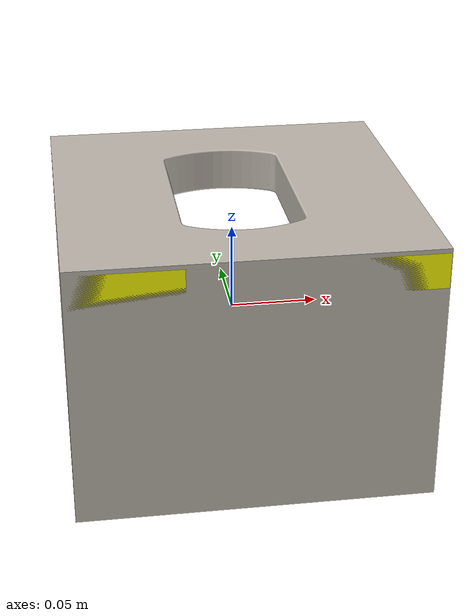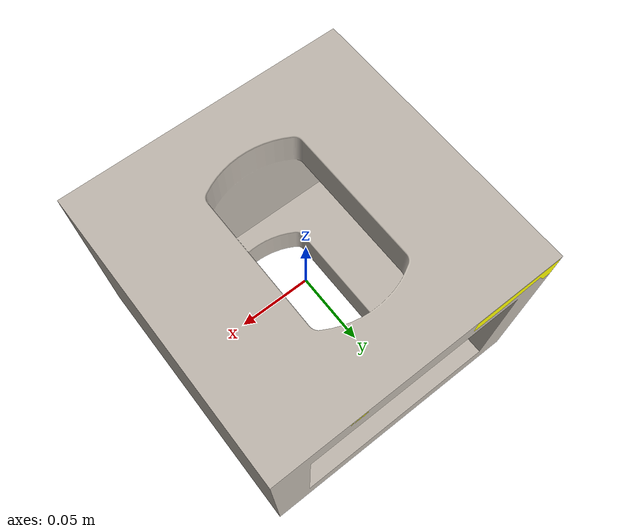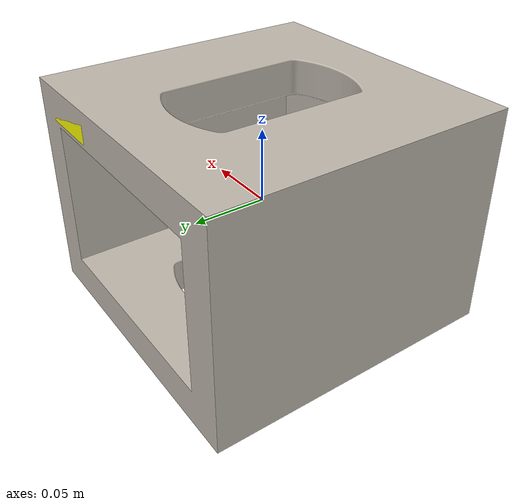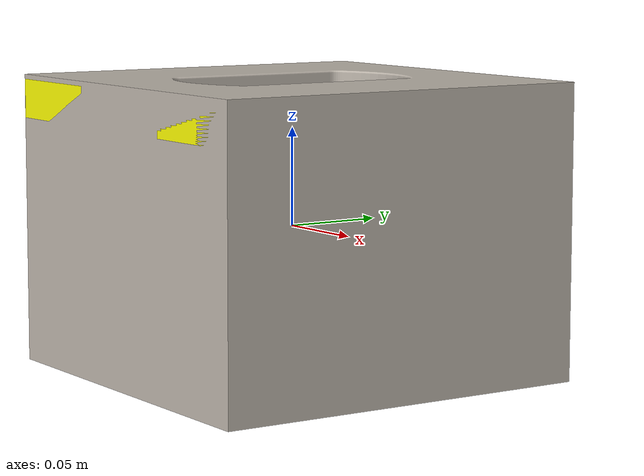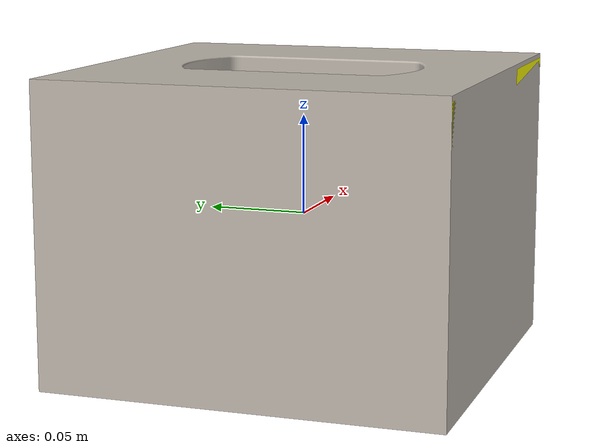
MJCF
<mujoco model="container">
  <asset>
    <mesh file="../meshes/custom/container.stl" name="container_mesh"/>
    <texture file="../../textures/bread.png" type="cube" name="metal" />
    <material name="MatMetal" texture="metal" specular="1" shininess="0.3" />
  </asset>
  <worldbody>
    <body>
      <body name="object">
        <geom pos="0 0 0" mesh="container_mesh" type="mesh" conaffinity="0" contype="0" material="MatMetal" group="1" name="container_vis"/>
        <geom pos="0.06875 0 0.0625" type="box" size="0.031 0.1 0.01" conaffinity="0" contype="1" group="0" rgba="1 1 0 1" name="container_col_toplft"/>
        <geom pos="-0.06875 0 0.0625" type="box" size="0.031 0.1 0.01" conaffinity="0" contype="1" group="0" rgba="1 1 0 1" name="container_col_toprgt"/>
        <geom pos="0 0.08125 0.0625" type="box" size="0.0375 0.0185 0.01" conaffinity="0" contype="1" group="0" rgba="1 1 0 1" name="container_col_topfront"/>
        <geom pos="0 -0.08125 0.0625" type="box" size="0.0375 0.0185 0.01" conaffinity="0" contype="1" group="0" rgba="1 1 0 1" name="container_col_topback"/>
      </body>
      <site rgba="0 0 0 0" size="0.005" pos="0 0 0" name="bottom_site"/>
      <site rgba="0 0 0 0" size="0.005" pos="0 0 0" name="top_site"/>
      <site rgba="0 0 0 0" size="0.005" pos="0 0 0" name="horizontal_radius_site"/>
    </body>
  </worldbody>
</mujoco>
